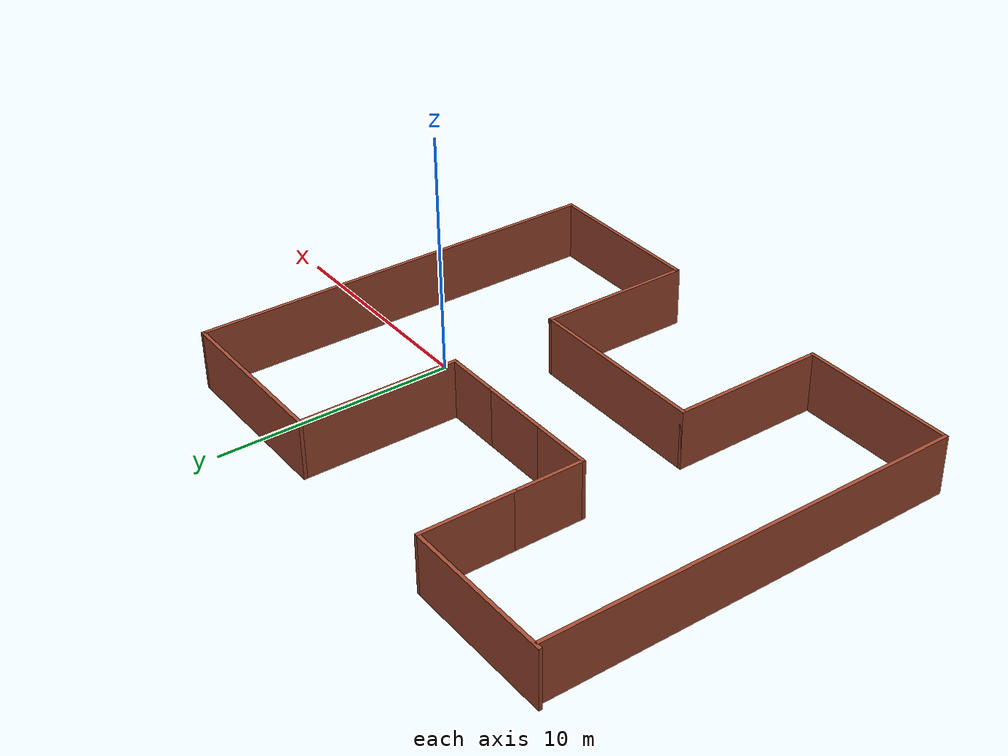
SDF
<?xml version='1.0'?>
<sdf version='1.7'>
  <model name='h_hallway_filled'>
    <pose>-6.55323 -0.689848 0 0 -0 0</pose>
    <link name='Wall_0'>
      <collision name='Wall_0_Collision'>
        <geometry>
          <box>
            <size>17.75 0.15 2.5</size>
          </box>
        </geometry>
        <pose>0 0 1.25 0 -0 0</pose>
      </collision>
      <visual name='Wall_0_Visual'>
        <pose>0 0 1.25 0 -0 0</pose>
        <geometry>
          <box>
            <size>17.75 0.15 2.5</size>
          </box>
        </geometry>
        <material>
          <script>
            <uri>file://media/materials/scripts/gazebo.material</uri>
            <name>Gazebo/Bricks</name>
          </script>
          <ambient>1 1 1 1</ambient>
        </material>
        <meta>
          <layer>0</layer>
        </meta>
      </visual>
      <pose>-10.675 -0.05 0 0 -0 -1.5708</pose>
    </link>
    <link name='Wall_1'>
      <collision name='Wall_1_Collision'>
        <geometry>
          <box>
            <size>6.75 0.15 2.5</size>
          </box>
        </geometry>
        <pose>0 0 1.25 0 -0 0</pose>
      </collision>
      <visual name='Wall_1_Visual'>
        <pose>0 0 1.25 0 -0 0</pose>
        <geometry>
          <box>
            <size>6.75 0.15 2.5</size>
          </box>
        </geometry>
        <material>
          <script>
            <uri>file://media/materials/scripts/gazebo.material</uri>
            <name>Gazebo/Bricks</name>
          </script>
          <ambient>1 1 1 1</ambient>
        </material>
        <meta>
          <layer>0</layer>
        </meta>
      </visual>
      <pose>-7.375 -8.85 0 0 -0 0</pose>
    </link>
    <link name='Wall_10'>
      <collision name='Wall_10_Collision'>
        <geometry>
          <box>
            <size>3 0.15 2.5</size>
          </box>
        </geometry>
        <pose>0 0 1.25 0 -0 0</pose>
      </collision>
      <visual name='Wall_10_Visual'>
        <pose>0 0 1.25 0 -0 0</pose>
        <geometry>
          <box>
            <size>3 0.15 2.5</size>
          </box>
        </geometry>
        <material>
          <script>
            <uri>file://media/materials/scripts/gazebo.material</uri>
            <name>Gazebo/Bricks</name>
          </script>
          <ambient>1 1 1 1</ambient>
        </material>
        <meta>
          <layer>0</layer>
        </meta>
      </visual>
      <pose>-0.25 2.15 0 0 -0 3.14159</pose>
    </link>
    <link name='Wall_11'>
      <collision name='Wall_11_Collision'>
        <geometry>
          <box>
            <size>2.75 0.15 2.5</size>
          </box>
        </geometry>
        <pose>0 0 1.25 0 -0 0</pose>
      </collision>
      <visual name='Wall_11_Visual'>
        <pose>0 0 1.25 0 -0 0</pose>
        <geometry>
          <box>
            <size>2.75 0.15 2.5</size>
          </box>
        </geometry>
        <material>
          <script>
            <uri>file://media/materials/scripts/gazebo.material</uri>
            <name>Gazebo/Bricks</name>
          </script>
          <ambient>1 1 1 1</ambient>
        </material>
        <meta>
          <layer>0</layer>
        </meta>
      </visual>
      <pose>-2.975 2.15 0 0 -0 3.14159</pose>
    </link>
    <link name='Wall_12'>
      <collision name='Wall_12_Collision'>
        <geometry>
          <box>
            <size>3 0.15 2.5</size>
          </box>
        </geometry>
        <pose>0 0 1.25 0 -0 0</pose>
      </collision>
      <visual name='Wall_12_Visual'>
        <pose>0 0 1.25 0 -0 0</pose>
        <geometry>
          <box>
            <size>3 0.15 2.5</size>
          </box>
        </geometry>
        <material>
          <script>
            <uri>file://media/materials/scripts/gazebo.material</uri>
            <name>Gazebo/Bricks</name>
          </script>
          <ambient>1 1 1 1</ambient>
        </material>
        <meta>
          <layer>0</layer>
        </meta>
      </visual>
      <pose>-4.275 3.575 0 0 -0 1.5708</pose>
    </link>
    <link name='Wall_13'>
      <collision name='Wall_13_Collision'>
        <geometry>
          <box>
            <size>4 0.15 2.5</size>
          </box>
        </geometry>
        <pose>0 0 1.25 0 -0 0</pose>
      </collision>
      <visual name='Wall_13_Visual'>
        <pose>0 0 1.25 0 -0 0</pose>
        <geometry>
          <box>
            <size>4 0.15 2.5</size>
          </box>
        </geometry>
        <material>
          <script>
            <uri>file://media/materials/scripts/gazebo.material</uri>
            <name>Gazebo/Bricks</name>
          </script>
          <ambient>1 1 1 1</ambient>
        </material>
        <meta>
          <layer>0</layer>
        </meta>
      </visual>
      <pose>-4.275 6.925 0 0 -0 1.5708</pose>
    </link>
    <link name='Wall_14'>
      <collision name='Wall_14_Collision'>
        <geometry>
          <box>
            <size>6.75 0.15 2.5</size>
          </box>
        </geometry>
        <pose>0 0 1.25 0 -0 0</pose>
      </collision>
      <visual name='Wall_14_Visual'>
        <pose>0 0 1.25 0 -0 0</pose>
        <geometry>
          <box>
            <size>6.75 0.15 2.5</size>
          </box>
        </geometry>
        <material>
          <script>
            <uri>file://media/materials/scripts/gazebo.material</uri>
            <name>Gazebo/Bricks</name>
          </script>
          <ambient>1 1 1 1</ambient>
        </material>
        <meta>
          <layer>0</layer>
        </meta>
      </visual>
      <pose>-7.575 8.85 0 0 -0 3.14159</pose>
    </link>
    <link name='Wall_2'>
      <collision name='Wall_2_Collision'>
        <geometry>
          <box>
            <size>6.5 0.15 2.5</size>
          </box>
        </geometry>
        <pose>0 0 1.25 0 -0 0</pose>
      </collision>
      <visual name='Wall_2_Visual'>
        <pose>0 0 1.25 0 -0 0</pose>
        <geometry>
          <box>
            <size>6.5 0.15 2.5</size>
          </box>
        </geometry>
        <material>
          <script>
            <uri>file://media/materials/scripts/gazebo.material</uri>
            <name>Gazebo/Bricks</name>
          </script>
          <ambient>1 1 1 1</ambient>
        </material>
        <meta>
          <layer>0</layer>
        </meta>
      </visual>
      <pose>-4.075 -5.675 0 0 -0 1.5708</pose>
    </link>
    <link name='Wall_3'>
      <collision name='Wall_3_Collision'>
        <geometry>
          <box>
            <size>8 0.15 2.5</size>
          </box>
        </geometry>
        <pose>0 0 1.25 0 -0 0</pose>
      </collision>
      <visual name='Wall_3_Visual'>
        <pose>0 0 1.25 0 -0 0</pose>
        <geometry>
          <box>
            <size>8 0.15 2.5</size>
          </box>
        </geometry>
        <material>
          <script>
            <uri>file://media/materials/scripts/gazebo.material</uri>
            <name>Gazebo/Bricks</name>
          </script>
          <ambient>1 1 1 1</ambient>
        </material>
        <meta>
          <layer>0</layer>
        </meta>
      </visual>
      <pose>-0.150001 -2.5 0 0 -0 0</pose>
    </link>
    <link name='Wall_4'>
      <collision name='Wall_4_Collision'>
        <geometry>
          <box>
            <size>6.5 0.15 2.5</size>
          </box>
        </geometry>
        <pose>0 0 1.25 0 -0 0</pose>
      </collision>
      <visual name='Wall_4_Visual'>
        <pose>0 0 1.25 0 -0 0</pose>
        <geometry>
          <box>
            <size>6.5 0.15 2.5</size>
          </box>
        </geometry>
        <material>
          <script>
            <uri>file://media/materials/scripts/gazebo.material</uri>
            <name>Gazebo/Bricks</name>
          </script>
          <ambient>1 1 1 1</ambient>
        </material>
        <meta>
          <layer>0</layer>
        </meta>
      </visual>
      <pose>3.775 -5.675 0 0 -0 -1.5708</pose>
    </link>
    <link name='Wall_5'>
      <collision name='Wall_5_Collision'>
        <geometry>
          <box>
            <size>7.25 0.15 2.5</size>
          </box>
        </geometry>
        <pose>0 0 1.25 0 -0 0</pose>
      </collision>
      <visual name='Wall_5_Visual'>
        <pose>0 0 1.25 0 -0 0</pose>
        <geometry>
          <box>
            <size>7.25 0.15 2.5</size>
          </box>
        </geometry>
        <material>
          <script>
            <uri>file://media/materials/scripts/gazebo.material</uri>
            <name>Gazebo/Bricks</name>
          </script>
          <ambient>1 1 1 1</ambient>
        </material>
        <meta>
          <layer>0</layer>
        </meta>
      </visual>
      <pose>7.325 -8.85 0 0 -0 0</pose>
    </link>
    <link name='Wall_6'>
      <collision name='Wall_6_Collision'>
        <geometry>
          <box>
            <size>17.75 0.15 2.5</size>
          </box>
        </geometry>
        <pose>0 0 1.25 0 -0 0</pose>
      </collision>
      <visual name='Wall_6_Visual'>
        <pose>0 0 1.25 0 -0 0</pose>
        <geometry>
          <box>
            <size>17.75 0.15 2.5</size>
          </box>
        </geometry>
        <material>
          <script>
            <uri>file://media/materials/scripts/gazebo.material</uri>
            <name>Gazebo/Bricks</name>
          </script>
          <ambient>1 1 1 1</ambient>
        </material>
        <meta>
          <layer>0</layer>
        </meta>
      </visual>
      <pose>10.875 -0.05 0 0 -0 1.5708</pose>
    </link>
    <link name='Wall_7'>
      <collision name='Wall_7_Collision'>
        <geometry>
          <box>
            <size>7.5 0.15 2.5</size>
          </box>
        </geometry>
        <pose>0 0 1.25 0 -0 0</pose>
      </collision>
      <visual name='Wall_7_Visual'>
        <pose>0 0 1.25 0 -0 0</pose>
        <geometry>
          <box>
            <size>7.5 0.15 2.5</size>
          </box>
        </geometry>
        <material>
          <script>
            <uri>file://media/materials/scripts/gazebo.material</uri>
            <name>Gazebo/Bricks</name>
          </script>
          <ambient>1 1 1 1</ambient>
        </material>
        <meta>
          <layer>0</layer>
        </meta>
      </visual>
      <pose>7.2 8.75 0 0 -0 3.14159</pose>
    </link>
    <link name='Wall_8'>
      <collision name='Wall_8_Collision'>
        <geometry>
          <box>
            <size>6.75 0.15 2.5</size>
          </box>
        </geometry>
        <pose>0 0 1.25 0 -0 0</pose>
      </collision>
      <visual name='Wall_8_Visual'>
        <pose>0 0 1.25 0 -0 0</pose>
        <geometry>
          <box>
            <size>6.75 0.15 2.5</size>
          </box>
        </geometry>
        <material>
          <script>
            <uri>file://media/materials/scripts/gazebo.material</uri>
            <name>Gazebo/Bricks</name>
          </script>
          <ambient>1 1 1 1</ambient>
        </material>
        <meta>
          <layer>0</layer>
        </meta>
      </visual>
      <pose>3.525 5.45 0 0 -0 -1.5708</pose>
    </link>
    <link name='Wall_9'>
      <collision name='Wall_9_Collision'>
        <geometry>
          <box>
            <size>2.5 0.15 2.5</size>
          </box>
        </geometry>
        <pose>0 0 1.25 0 -0 0</pose>
      </collision>
      <visual name='Wall_9_Visual'>
        <pose>0 0 1.25 0 -0 0</pose>
        <geometry>
          <box>
            <size>2.5 0.15 2.5</size>
          </box>
        </geometry>
        <material>
          <script>
            <uri>file://media/materials/scripts/gazebo.material</uri>
            <name>Gazebo/Bricks</name>
          </script>
          <ambient>1 1 1 1</ambient>
        </material>
        <meta>
          <layer>0</layer>
        </meta>
      </visual>
      <pose>2.35 2.15 0 0 -0 3.14159</pose>
    </link>
    <static>1</static>
  </model>
</sdf>
